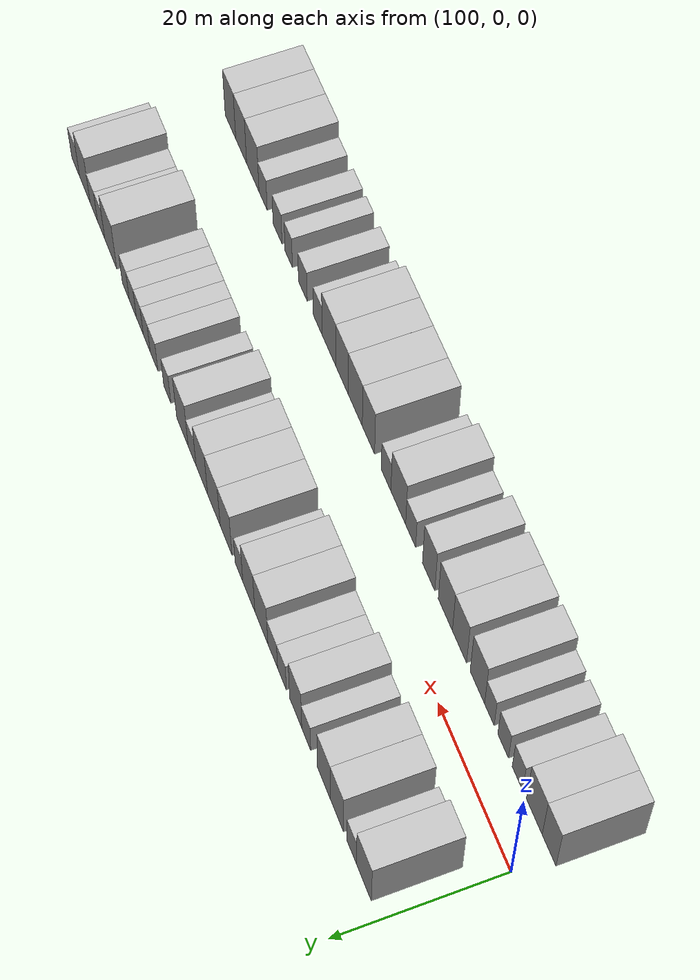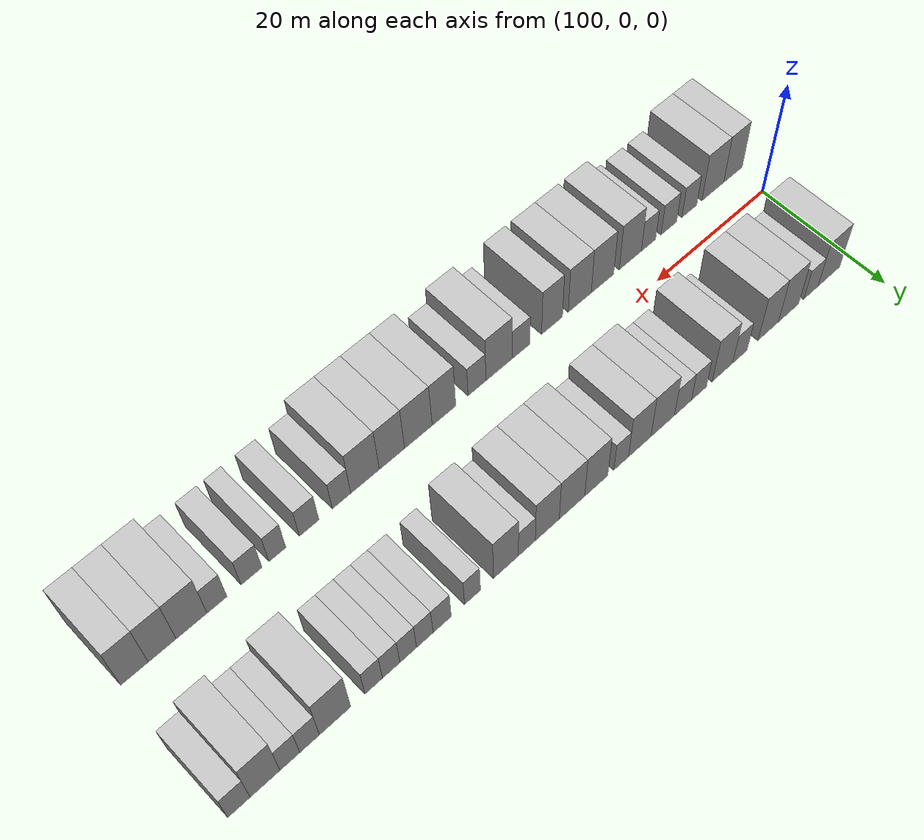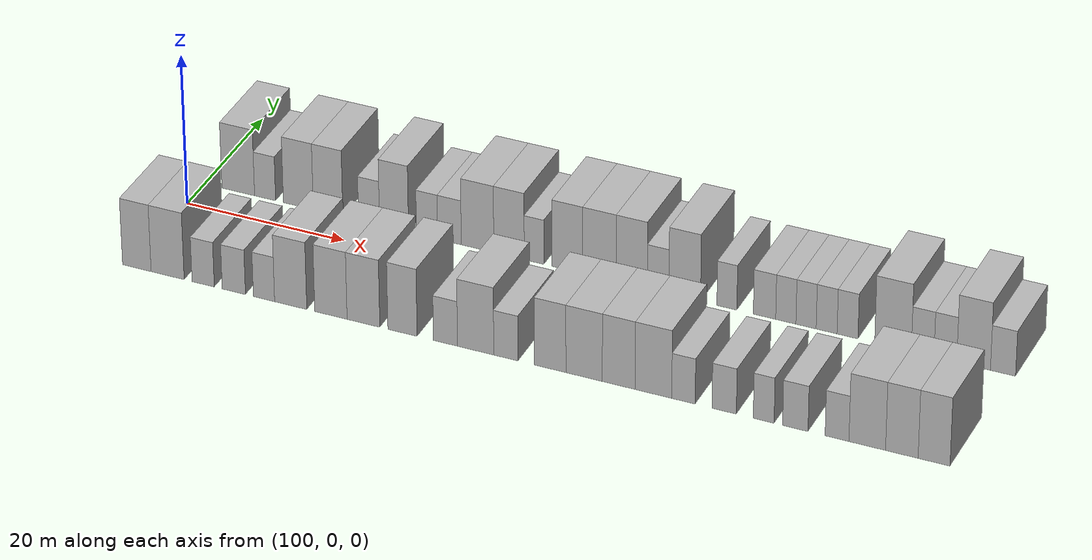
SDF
<sdf version="1.6">
 <world name="default">
  <model name="building_27">
   <static>1</static>
   <pose>104.3361 9.5000 0 0.000000 0.000000 1.570796</pose>
   <link name="link">
    <pose>0 0 4.50 0 0 0</pose>
    <collision name="collision"><geometry><box><size>10.0000 4.2153 9.0000</size></box></geometry></collision>
    <visual name="visual">
     <cast_shadows>0</cast_shadows>
     <geometry><box><size>10.0000 4.2153 9.0000</size></box></geometry>
     <material>
      <script>
       <uri>model://HANNAS_wall/materials/scripts</uri>
       <uri>model://HANNAS_wall/materials/textures</uri>
       <name>vrc/HANNAS_wall</name>
      </script>
     </material>
    </visual>
   </link>
  </model>
  <model name="building_28">
   <static>1</static>
   <pose>107.7985 9.5000 0 0.000000 0.000000 1.570796</pose>
   <link name="link">
    <pose>0 0 3.00 0 0 0</pose>
    <collision name="collision"><geometry><box><size>10.0000 2.7095 6.0000</size></box></geometry></collision>
    <visual name="visual">
     <cast_shadows>0</cast_shadows>
     <geometry><box><size>10.0000 2.7095 6.0000</size></box></geometry>
     <material>
      <script>
       <uri>model://HANNAS_wall/materials/scripts</uri>
       <uri>model://HANNAS_wall/materials/textures</uri>
       <name>vrc/HANNAS_wall</name>
      </script>
     </material>
    </visual>
   </link>
  </model>
  <model name="building_29">
   <static>1</static>
   <pose>112.0687 9.5000 0 0.000000 0.000000 1.570796</pose>
   <link name="link">
    <pose>0 0 4.50 0 0 0</pose>
    <collision name="collision"><geometry><box><size>10.0000 3.8309 9.0000</size></box></geometry></collision>
    <visual name="visual">
     <cast_shadows>0</cast_shadows>
     <geometry><box><size>10.0000 3.8309 9.0000</size></box></geometry>
     <material>
      <script>
       <uri>model://HANNAS_wall/materials/scripts</uri>
       <uri>model://HANNAS_wall/materials/textures</uri>
       <name>vrc/HANNAS_wall</name>
      </script>
     </material>
    </visual>
   </link>
  </model>
  <model name="building_30">
   <static>1</static>
   <pose>115.8714 9.5000 0 0.000000 0.000000 1.570796</pose>
   <link name="link">
    <pose>0 0 4.50 0 0 0</pose>
    <collision name="collision"><geometry><box><size>10.0000 3.7743 9.0000</size></box></geometry></collision>
    <visual name="visual">
     <cast_shadows>0</cast_shadows>
     <geometry><box><size>10.0000 3.7743 9.0000</size></box></geometry>
     <material>
      <script>
       <uri>model://HANNAS_wall/materials/scripts</uri>
       <uri>model://HANNAS_wall/materials/textures</uri>
       <name>vrc/HANNAS_wall</name>
      </script>
     </material>
    </visual>
   </link>
  </model>
  <model name="building_31">
   <static>1</static>
   <pose>121.0918 9.5000 0 0.000000 0.000000 1.570796</pose>
   <link name="link">
    <pose>0 0 3.00 0 0 0</pose>
    <collision name="collision"><geometry><box><size>10.0000 2.6666 6.0000</size></box></geometry></collision>
    <visual name="visual">
     <cast_shadows>0</cast_shadows>
     <geometry><box><size>10.0000 2.6666 6.0000</size></box></geometry>
     <material>
      <script>
       <uri>model://HANNAS_wall/materials/scripts</uri>
       <uri>model://HANNAS_wall/materials/textures</uri>
       <name>vrc/HANNAS_wall</name>
      </script>
     </material>
    </visual>
   </link>
  </model>
  <model name="building_32">
   <static>1</static>
   <pose>124.2639 9.5000 0 0.000000 0.000000 1.570796</pose>
   <link name="link">
    <pose>0 0 4.50 0 0 0</pose>
    <collision name="collision"><geometry><box><size>10.0000 3.6775 9.0000</size></box></geometry></collision>
    <visual name="visual">
     <cast_shadows>0</cast_shadows>
     <geometry><box><size>10.0000 3.6775 9.0000</size></box></geometry>
     <material>
      <script>
       <uri>model://HANNAS_wall/materials/scripts</uri>
       <uri>model://HANNAS_wall/materials/textures</uri>
       <name>vrc/HANNAS_wall</name>
      </script>
     </material>
    </visual>
   </link>
  </model>
  <model name="building_33">
   <static>1</static>
   <pose>128.4353 9.5000 0 0.000000 0.000000 1.570796</pose>
   <link name="link">
    <pose>0 0 3.00 0 0 0</pose>
    <collision name="collision"><geometry><box><size>10.0000 2.6653 6.0000</size></box></geometry></collision>
    <visual name="visual">
     <cast_shadows>0</cast_shadows>
     <geometry><box><size>10.0000 2.6653 6.0000</size></box></geometry>
     <material>
      <script>
       <uri>model://HANNAS_wall/materials/scripts</uri>
       <uri>model://HANNAS_wall/materials/textures</uri>
       <name>vrc/HANNAS_wall</name>
      </script>
     </material>
    </visual>
   </link>
  </model>
  <model name="building_34">
   <static>1</static>
   <pose>131.2586 9.5000 0 0.000000 0.000000 1.570796</pose>
   <link name="link">
    <pose>0 0 3.00 0 0 0</pose>
    <collision name="collision"><geometry><box><size>10.0000 2.9811 6.0000</size></box></geometry></collision>
    <visual name="visual">
     <cast_shadows>0</cast_shadows>
     <geometry><box><size>10.0000 2.9811 6.0000</size></box></geometry>
     <material>
      <script>
       <uri>model://HANNAS_wall/materials/scripts</uri>
       <uri>model://HANNAS_wall/materials/textures</uri>
       <name>vrc/HANNAS_wall</name>
      </script>
     </material>
    </visual>
   </link>
  </model>
  <model name="building_35">
   <static>1</static>
   <pose>134.7877 9.5000 0 0.000000 0.000000 1.570796</pose>
   <link name="link">
    <pose>0 0 4.50 0 0 0</pose>
    <collision name="collision"><geometry><box><size>10.0000 4.0771 9.0000</size></box></geometry></collision>
    <visual name="visual">
     <cast_shadows>0</cast_shadows>
     <geometry><box><size>10.0000 4.0771 9.0000</size></box></geometry>
     <material>
      <script>
       <uri>model://HANNAS_wall/materials/scripts</uri>
       <uri>model://HANNAS_wall/materials/textures</uri>
       <name>vrc/HANNAS_wall</name>
      </script>
     </material>
    </visual>
   </link>
  </model>
  <model name="building_36">
   <static>1</static>
   <pose>138.7302 9.5000 0 0.000000 0.000000 1.570796</pose>
   <link name="link">
    <pose>0 0 4.50 0 0 0</pose>
    <collision name="collision"><geometry><box><size>10.0000 3.8079 9.0000</size></box></geometry></collision>
    <visual name="visual">
     <cast_shadows>0</cast_shadows>
     <geometry><box><size>10.0000 3.8079 9.0000</size></box></geometry>
     <material>
      <script>
       <uri>model://HANNAS_wall/materials/scripts</uri>
       <uri>model://HANNAS_wall/materials/textures</uri>
       <name>vrc/HANNAS_wall</name>
      </script>
     </material>
    </visual>
   </link>
  </model>
  <model name="building_37">
   <static>1</static>
   <pose>141.8558 9.5000 0 0.000000 0.000000 1.570796</pose>
   <link name="link">
    <pose>0 0 3.00 0 0 0</pose>
    <collision name="collision"><geometry><box><size>10.0000 2.4435 6.0000</size></box></geometry></collision>
    <visual name="visual">
     <cast_shadows>0</cast_shadows>
     <geometry><box><size>10.0000 2.4435 6.0000</size></box></geometry>
     <material>
      <script>
       <uri>model://HANNAS_wall/materials/scripts</uri>
       <uri>model://HANNAS_wall/materials/textures</uri>
       <name>vrc/HANNAS_wall</name>
      </script>
     </material>
    </visual>
   </link>
  </model>
  <model name="building_38">
   <static>1</static>
   <pose>145.9824 9.5000 0 0.000000 0.000000 1.570796</pose>
   <link name="link">
    <pose>0 0 4.50 0 0 0</pose>
    <collision name="collision"><geometry><box><size>10.0000 3.8097 9.0000</size></box></geometry></collision>
    <visual name="visual">
     <cast_shadows>0</cast_shadows>
     <geometry><box><size>10.0000 3.8097 9.0000</size></box></geometry>
     <material>
      <script>
       <uri>model://HANNAS_wall/materials/scripts</uri>
       <uri>model://HANNAS_wall/materials/textures</uri>
       <name>vrc/HANNAS_wall</name>
      </script>
     </material>
    </visual>
   </link>
  </model>
  <model name="building_39">
   <static>1</static>
   <pose>149.9508 9.5000 0 0.000000 0.000000 1.570796</pose>
   <link name="link">
    <pose>0 0 4.50 0 0 0</pose>
    <collision name="collision"><geometry><box><size>10.0000 4.1271 9.0000</size></box></geometry></collision>
    <visual name="visual">
     <cast_shadows>0</cast_shadows>
     <geometry><box><size>10.0000 4.1271 9.0000</size></box></geometry>
     <material>
      <script>
       <uri>model://HANNAS_wall/materials/scripts</uri>
       <uri>model://HANNAS_wall/materials/textures</uri>
       <name>vrc/HANNAS_wall</name>
      </script>
     </material>
    </visual>
   </link>
  </model>
  <model name="building_40">
   <static>1</static>
   <pose>153.9296 9.5000 0 0.000000 0.000000 1.570796</pose>
   <link name="link">
    <pose>0 0 4.50 0 0 0</pose>
    <collision name="collision"><geometry><box><size>10.0000 3.8306 9.0000</size></box></geometry></collision>
    <visual name="visual">
     <cast_shadows>0</cast_shadows>
     <geometry><box><size>10.0000 3.8306 9.0000</size></box></geometry>
     <material>
      <script>
       <uri>model://HANNAS_wall/materials/scripts</uri>
       <uri>model://HANNAS_wall/materials/textures</uri>
       <name>vrc/HANNAS_wall</name>
      </script>
     </material>
    </visual>
   </link>
  </model>
  <model name="building_41">
   <static>1</static>
   <pose>157.1748 9.5000 0 0.000000 0.000000 1.570796</pose>
   <link name="link">
    <pose>0 0 3.00 0 0 0</pose>
    <collision name="collision"><geometry><box><size>10.0000 2.6598 6.0000</size></box></geometry></collision>
    <visual name="visual">
     <cast_shadows>0</cast_shadows>
     <geometry><box><size>10.0000 2.6598 6.0000</size></box></geometry>
     <material>
      <script>
       <uri>model://HANNAS_wall/materials/scripts</uri>
       <uri>model://HANNAS_wall/materials/textures</uri>
       <name>vrc/HANNAS_wall</name>
      </script>
     </material>
    </visual>
   </link>
  </model>
  <model name="building_42">
   <static>1</static>
   <pose>160.4369 9.5000 0 0.000000 0.000000 1.570796</pose>
   <link name="link">
    <pose>0 0 4.50 0 0 0</pose>
    <collision name="collision"><geometry><box><size>10.0000 3.8644 9.0000</size></box></geometry></collision>
    <visual name="visual">
     <cast_shadows>0</cast_shadows>
     <geometry><box><size>10.0000 3.8644 9.0000</size></box></geometry>
     <material>
      <script>
       <uri>model://HANNAS_wall/materials/scripts</uri>
       <uri>model://HANNAS_wall/materials/textures</uri>
       <name>vrc/HANNAS_wall</name>
      </script>
     </material>
    </visual>
   </link>
  </model>
  <model name="building_43">
   <static>1</static>
   <pose>165.5835 9.5000 0 0.000000 0.000000 1.570796</pose>
   <link name="link">
    <pose>0 0 3.00 0 0 0</pose>
    <collision name="collision"><geometry><box><size>10.0000 2.4288 6.0000</size></box></geometry></collision>
    <visual name="visual">
     <cast_shadows>0</cast_shadows>
     <geometry><box><size>10.0000 2.4288 6.0000</size></box></geometry>
     <material>
      <script>
       <uri>model://HANNAS_wall/materials/scripts</uri>
       <uri>model://HANNAS_wall/materials/textures</uri>
       <name>vrc/HANNAS_wall</name>
      </script>
     </material>
    </visual>
   </link>
  </model>
  <model name="building_44">
   <static>1</static>
   <pose>170.1487 9.5000 0 0.000000 0.000000 1.570796</pose>
   <link name="link">
    <pose>0 0 3.00 0 0 0</pose>
    <collision name="collision"><geometry><box><size>10.0000 2.7016 6.0000</size></box></geometry></collision>
    <visual name="visual">
     <cast_shadows>0</cast_shadows>
     <geometry><box><size>10.0000 2.7016 6.0000</size></box></geometry>
     <material>
      <script>
       <uri>model://HANNAS_wall/materials/scripts</uri>
       <uri>model://HANNAS_wall/materials/textures</uri>
       <name>vrc/HANNAS_wall</name>
      </script>
     </material>
    </visual>
   </link>
  </model>
  <model name="building_45">
   <static>1</static>
   <pose>172.7226 9.5000 0 0.000000 0.000000 1.570796</pose>
   <link name="link">
    <pose>0 0 3.00 0 0 0</pose>
    <collision name="collision"><geometry><box><size>10.0000 2.4462 6.0000</size></box></geometry></collision>
    <visual name="visual">
     <cast_shadows>0</cast_shadows>
     <geometry><box><size>10.0000 2.4462 6.0000</size></box></geometry>
     <material>
      <script>
       <uri>model://HANNAS_wall/materials/scripts</uri>
       <uri>model://HANNAS_wall/materials/textures</uri>
       <name>vrc/HANNAS_wall</name>
      </script>
     </material>
    </visual>
   </link>
  </model>
  <model name="building_46">
   <static>1</static>
   <pose>175.1632 9.5000 0 0.000000 0.000000 1.570796</pose>
   <link name="link">
    <pose>0 0 3.00 0 0 0</pose>
    <collision name="collision"><geometry><box><size>10.0000 2.4352 6.0000</size></box></geometry></collision>
    <visual name="visual">
     <cast_shadows>0</cast_shadows>
     <geometry><box><size>10.0000 2.4352 6.0000</size></box></geometry>
     <material>
      <script>
       <uri>model://HANNAS_wall/materials/scripts</uri>
       <uri>model://HANNAS_wall/materials/textures</uri>
       <name>vrc/HANNAS_wall</name>
      </script>
     </material>
    </visual>
   </link>
  </model>
  <model name="building_47">
   <static>1</static>
   <pose>177.6382 9.5000 0 0.000000 0.000000 1.570796</pose>
   <link name="link">
    <pose>0 0 3.00 0 0 0</pose>
    <collision name="collision"><geometry><box><size>10.0000 2.5147 6.0000</size></box></geometry></collision>
    <visual name="visual">
     <cast_shadows>0</cast_shadows>
     <geometry><box><size>10.0000 2.5147 6.0000</size></box></geometry>
     <material>
      <script>
       <uri>model://HANNAS_wall/materials/scripts</uri>
       <uri>model://HANNAS_wall/materials/textures</uri>
       <name>vrc/HANNAS_wall</name>
      </script>
     </material>
    </visual>
   </link>
  </model>
  <model name="building_48">
   <static>1</static>
   <pose>180.1481 9.5000 0 0.000000 0.000000 1.570796</pose>
   <link name="link">
    <pose>0 0 3.00 0 0 0</pose>
    <collision name="collision"><geometry><box><size>10.0000 2.5051 6.0000</size></box></geometry></collision>
    <visual name="visual">
     <cast_shadows>0</cast_shadows>
     <geometry><box><size>10.0000 2.5051 6.0000</size></box></geometry>
     <material>
      <script>
       <uri>model://HANNAS_wall/materials/scripts</uri>
       <uri>model://HANNAS_wall/materials/textures</uri>
       <name>vrc/HANNAS_wall</name>
      </script>
     </material>
    </visual>
   </link>
  </model>
  <model name="building_49">
   <static>1</static>
   <pose>185.5850 9.5000 0 0.000000 0.000000 1.570796</pose>
   <link name="link">
    <pose>0 0 4.50 0 0 0</pose>
    <collision name="collision"><geometry><box><size>10.0000 4.3687 9.0000</size></box></geometry></collision>
    <visual name="visual">
     <cast_shadows>0</cast_shadows>
     <geometry><box><size>10.0000 4.3687 9.0000</size></box></geometry>
     <material>
      <script>
       <uri>model://HANNAS_wall/materials/scripts</uri>
       <uri>model://HANNAS_wall/materials/textures</uri>
       <name>vrc/HANNAS_wall</name>
      </script>
     </material>
    </visual>
   </link>
  </model>
  <model name="building_50">
   <static>1</static>
   <pose>189.1171 9.5000 0 0.000000 0.000000 1.570796</pose>
   <link name="link">
    <pose>0 0 3.00 0 0 0</pose>
    <collision name="collision"><geometry><box><size>10.0000 2.6957 6.0000</size></box></geometry></collision>
    <visual name="visual">
     <cast_shadows>0</cast_shadows>
     <geometry><box><size>10.0000 2.6957 6.0000</size></box></geometry>
     <material>
      <script>
       <uri>model://HANNAS_wall/materials/scripts</uri>
       <uri>model://HANNAS_wall/materials/textures</uri>
       <name>vrc/HANNAS_wall</name>
      </script>
     </material>
    </visual>
   </link>
  </model>
  <model name="building_51">
   <static>1</static>
   <pose>191.8119 9.5000 0 0.000000 0.000000 1.570796</pose>
   <link name="link">
    <pose>0 0 3.00 0 0 0</pose>
    <collision name="collision"><geometry><box><size>10.0000 2.6939 6.0000</size></box></geometry></collision>
    <visual name="visual">
     <cast_shadows>0</cast_shadows>
     <geometry><box><size>10.0000 2.6939 6.0000</size></box></geometry>
     <material>
      <script>
       <uri>model://HANNAS_wall/materials/scripts</uri>
       <uri>model://HANNAS_wall/materials/textures</uri>
       <name>vrc/HANNAS_wall</name>
      </script>
     </material>
    </visual>
   </link>
  </model>
  <model name="building_52">
   <static>1</static>
   <pose>195.1478 9.5000 0 0.000000 0.000000 1.570796</pose>
   <link name="link">
    <pose>0 0 4.50 0 0 0</pose>
    <collision name="collision"><geometry><box><size>10.0000 3.9780 9.0000</size></box></geometry></collision>
    <visual name="visual">
     <cast_shadows>0</cast_shadows>
     <geometry><box><size>10.0000 3.9780 9.0000</size></box></geometry>
     <material>
      <script>
       <uri>model://HANNAS_wall/materials/scripts</uri>
       <uri>model://HANNAS_wall/materials/textures</uri>
       <name>vrc/HANNAS_wall</name>
      </script>
     </material>
    </visual>
   </link>
  </model>
  <model name="building_53">
   <static>1</static>
   <pose>198.6172 9.5000 0 0.000000 0.000000 1.570796</pose>
   <link name="link">
    <pose>0 0 3.00 0 0 0</pose>
    <collision name="collision"><geometry><box><size>10.0000 2.9608 6.0000</size></box></geometry></collision>
    <visual name="visual">
     <cast_shadows>0</cast_shadows>
     <geometry><box><size>10.0000 2.9608 6.0000</size></box></geometry>
     <material>
      <script>
       <uri>model://HANNAS_wall/materials/scripts</uri>
       <uri>model://HANNAS_wall/materials/textures</uri>
       <name>vrc/HANNAS_wall</name>
      </script>
     </material>
    </visual>
   </link>
  </model>
  <model name="building_78">
   <static>1</static>
   <pose>100.7708 -9.5000 0 0.000000 0.000000 1.570796</pose>
   <link name="link">
    <pose>0 0 4.50 0 0 0</pose>
    <collision name="collision"><geometry><box><size>10.0000 3.6310 9.0000</size></box></geometry></collision>
    <visual name="visual">
     <cast_shadows>0</cast_shadows>
     <geometry><box><size>10.0000 3.6310 9.0000</size></box></geometry>
     <material>
      <script>
       <uri>model://HANNAS_wall/materials/scripts</uri>
       <uri>model://HANNAS_wall/materials/textures</uri>
       <name>vrc/HANNAS_wall</name>
      </script>
     </material>
    </visual>
   </link>
  </model>
  <model name="building_79">
   <static>1</static>
   <pose>104.6839 -9.5000 0 0.000000 0.000000 1.570796</pose>
   <link name="link">
    <pose>0 0 4.50 0 0 0</pose>
    <collision name="collision"><geometry><box><size>10.0000 4.1952 9.0000</size></box></geometry></collision>
    <visual name="visual">
     <cast_shadows>0</cast_shadows>
     <geometry><box><size>10.0000 4.1952 9.0000</size></box></geometry>
     <material>
      <script>
       <uri>model://HANNAS_wall/materials/scripts</uri>
       <uri>model://HANNAS_wall/materials/textures</uri>
       <name>vrc/HANNAS_wall</name>
      </script>
     </material>
    </visual>
   </link>
  </model>
  <model name="building_80">
   <static>1</static>
   <pose>109.1863 -9.5000 0 0.000000 0.000000 1.570796</pose>
   <link name="link">
    <pose>0 0 3.00 0 0 0</pose>
    <collision name="collision"><geometry><box><size>10.0000 2.8095 6.0000</size></box></geometry></collision>
    <visual name="visual">
     <cast_shadows>0</cast_shadows>
     <geometry><box><size>10.0000 2.8095 6.0000</size></box></geometry>
     <material>
      <script>
       <uri>model://HANNAS_wall/materials/scripts</uri>
       <uri>model://HANNAS_wall/materials/textures</uri>
       <name>vrc/HANNAS_wall</name>
      </script>
     </material>
    </visual>
   </link>
  </model>
  <model name="building_81">
   <static>1</static>
   <pose>113.0525 -9.5000 0 0.000000 0.000000 1.570796</pose>
   <link name="link">
    <pose>0 0 3.00 0 0 0</pose>
    <collision name="collision"><geometry><box><size>10.0000 2.9230 6.0000</size></box></geometry></collision>
    <visual name="visual">
     <cast_shadows>0</cast_shadows>
     <geometry><box><size>10.0000 2.9230 6.0000</size></box></geometry>
     <material>
      <script>
       <uri>model://HANNAS_wall/materials/scripts</uri>
       <uri>model://HANNAS_wall/materials/textures</uri>
       <name>vrc/HANNAS_wall</name>
      </script>
     </material>
    </visual>
   </link>
  </model>
  <model name="building_82">
   <static>1</static>
   <pose>116.8422 -9.5000 0 0.000000 0.000000 1.570796</pose>
   <link name="link">
    <pose>0 0 3.00 0 0 0</pose>
    <collision name="collision"><geometry><box><size>10.0000 2.6564 6.0000</size></box></geometry></collision>
    <visual name="visual">
     <cast_shadows>0</cast_shadows>
     <geometry><box><size>10.0000 2.6564 6.0000</size></box></geometry>
     <material>
      <script>
       <uri>model://HANNAS_wall/materials/scripts</uri>
       <uri>model://HANNAS_wall/materials/textures</uri>
       <name>vrc/HANNAS_wall</name>
      </script>
     </material>
    </visual>
   </link>
  </model>
  <model name="building_83">
   <static>1</static>
   <pose>120.1828 -9.5000 0 0.000000 0.000000 1.570796</pose>
   <link name="link">
    <pose>0 0 4.50 0 0 0</pose>
    <collision name="collision"><geometry><box><size>10.0000 4.0248 9.0000</size></box></geometry></collision>
    <visual name="visual">
     <cast_shadows>0</cast_shadows>
     <geometry><box><size>10.0000 4.0248 9.0000</size></box></geometry>
     <material>
      <script>
       <uri>model://HANNAS_wall/materials/scripts</uri>
       <uri>model://HANNAS_wall/materials/textures</uri>
       <name>vrc/HANNAS_wall</name>
      </script>
     </material>
    </visual>
   </link>
  </model>
  <model name="building_84">
   <static>1</static>
   <pose>125.2018 -9.5000 0 0.000000 0.000000 1.570796</pose>
   <link name="link">
    <pose>0 0 4.50 0 0 0</pose>
    <collision name="collision"><geometry><box><size>10.0000 4.0130 9.0000</size></box></geometry></collision>
    <visual name="visual">
     <cast_shadows>0</cast_shadows>
     <geometry><box><size>10.0000 4.0130 9.0000</size></box></geometry>
     <material>
      <script>
       <uri>model://HANNAS_wall/materials/scripts</uri>
       <uri>model://HANNAS_wall/materials/textures</uri>
       <name>vrc/HANNAS_wall</name>
      </script>
     </material>
    </visual>
   </link>
  </model>
  <model name="building_85">
   <static>1</static>
   <pose>129.2365 -9.5000 0 0.000000 0.000000 1.570796</pose>
   <link name="link">
    <pose>0 0 4.50 0 0 0</pose>
    <collision name="collision"><geometry><box><size>10.0000 4.0565 9.0000</size></box></geometry></collision>
    <visual name="visual">
     <cast_shadows>0</cast_shadows>
     <geometry><box><size>10.0000 4.0565 9.0000</size></box></geometry>
     <material>
      <script>
       <uri>model://HANNAS_wall/materials/scripts</uri>
       <uri>model://HANNAS_wall/materials/textures</uri>
       <name>vrc/HANNAS_wall</name>
      </script>
     </material>
    </visual>
   </link>
  </model>
  <model name="building_86">
   <static>1</static>
   <pose>134.0668 -9.5000 0 0.000000 0.000000 1.570796</pose>
   <link name="link">
    <pose>0 0 4.50 0 0 0</pose>
    <collision name="collision"><geometry><box><size>10.0000 3.6040 9.0000</size></box></geometry></collision>
    <visual name="visual">
     <cast_shadows>0</cast_shadows>
     <geometry><box><size>10.0000 3.6040 9.0000</size></box></geometry>
     <material>
      <script>
       <uri>model://HANNAS_wall/materials/scripts</uri>
       <uri>model://HANNAS_wall/materials/textures</uri>
       <name>vrc/HANNAS_wall</name>
      </script>
     </material>
    </visual>
   </link>
  </model>
  <model name="building_87">
   <static>1</static>
   <pose>139.3465 -9.5000 0 0.000000 0.000000 1.570796</pose>
   <link name="link">
    <pose>0 0 3.00 0 0 0</pose>
    <collision name="collision"><geometry><box><size>10.0000 2.9555 6.0000</size></box></geometry></collision>
    <visual name="visual">
     <cast_shadows>0</cast_shadows>
     <geometry><box><size>10.0000 2.9555 6.0000</size></box></geometry>
     <material>
      <script>
       <uri>model://HANNAS_wall/materials/scripts</uri>
       <uri>model://HANNAS_wall/materials/textures</uri>
       <name>vrc/HANNAS_wall</name>
      </script>
     </material>
    </visual>
   </link>
  </model>
  <model name="building_88">
   <static>1</static>
   <pose>143.0411 -9.5000 0 0.000000 0.000000 1.570796</pose>
   <link name="link">
    <pose>0 0 4.50 0 0 0</pose>
    <collision name="collision"><geometry><box><size>10.0000 4.4336 9.0000</size></box></geometry></collision>
    <visual name="visual">
     <cast_shadows>0</cast_shadows>
     <geometry><box><size>10.0000 4.4336 9.0000</size></box></geometry>
     <material>
      <script>
       <uri>model://HANNAS_wall/materials/scripts</uri>
       <uri>model://HANNAS_wall/materials/textures</uri>
       <name>vrc/HANNAS_wall</name>
      </script>
     </material>
    </visual>
   </link>
  </model>
  <model name="building_89">
   <static>1</static>
   <pose>146.7337 -9.5000 0 0.000000 0.000000 1.570796</pose>
   <link name="link">
    <pose>0 0 3.00 0 0 0</pose>
    <collision name="collision"><geometry><box><size>10.0000 2.9517 6.0000</size></box></geometry></collision>
    <visual name="visual">
     <cast_shadows>0</cast_shadows>
     <geometry><box><size>10.0000 2.9517 6.0000</size></box></geometry>
     <material>
      <script>
       <uri>model://HANNAS_wall/materials/scripts</uri>
       <uri>model://HANNAS_wall/materials/textures</uri>
       <name>vrc/HANNAS_wall</name>
      </script>
     </material>
    </visual>
   </link>
  </model>
  <model name="building_90">
   <static>1</static>
   <pose>152.1089 -9.5000 0 0.000000 0.000000 1.570796</pose>
   <link name="link">
    <pose>0 0 4.50 0 0 0</pose>
    <collision name="collision"><geometry><box><size>10.0000 3.7985 9.0000</size></box></geometry></collision>
    <visual name="visual">
     <cast_shadows>0</cast_shadows>
     <geometry><box><size>10.0000 3.7985 9.0000</size></box></geometry>
     <material>
      <script>
       <uri>model://HANNAS_wall/materials/scripts</uri>
       <uri>model://HANNAS_wall/materials/textures</uri>
       <name>vrc/HANNAS_wall</name>
      </script>
     </material>
    </visual>
   </link>
  </model>
  <model name="building_91">
   <static>1</static>
   <pose>156.2014 -9.5000 0 0.000000 0.000000 1.570796</pose>
   <link name="link">
    <pose>0 0 4.50 0 0 0</pose>
    <collision name="collision"><geometry><box><size>10.0000 4.3866 9.0000</size></box></geometry></collision>
    <visual name="visual">
     <cast_shadows>0</cast_shadows>
     <geometry><box><size>10.0000 4.3866 9.0000</size></box></geometry>
     <material>
      <script>
       <uri>model://HANNAS_wall/materials/scripts</uri>
       <uri>model://HANNAS_wall/materials/textures</uri>
       <name>vrc/HANNAS_wall</name>
      </script>
     </material>
    </visual>
   </link>
  </model>
  <model name="building_92">
   <static>1</static>
   <pose>160.3669 -9.5000 0 0.000000 0.000000 1.570796</pose>
   <link name="link">
    <pose>0 0 4.50 0 0 0</pose>
    <collision name="collision"><geometry><box><size>10.0000 3.9443 9.0000</size></box></geometry></collision>
    <visual name="visual">
     <cast_shadows>0</cast_shadows>
     <geometry><box><size>10.0000 3.9443 9.0000</size></box></geometry>
     <material>
      <script>
       <uri>model://HANNAS_wall/materials/scripts</uri>
       <uri>model://HANNAS_wall/materials/textures</uri>
       <name>vrc/HANNAS_wall</name>
      </script>
     </material>
    </visual>
   </link>
  </model>
  <model name="building_93">
   <static>1</static>
   <pose>164.5272 -9.5000 0 0.000000 0.000000 1.570796</pose>
   <link name="link">
    <pose>0 0 4.50 0 0 0</pose>
    <collision name="collision"><geometry><box><size>10.0000 4.3764 9.0000</size></box></geometry></collision>
    <visual name="visual">
     <cast_shadows>0</cast_shadows>
     <geometry><box><size>10.0000 4.3764 9.0000</size></box></geometry>
     <material>
      <script>
       <uri>model://HANNAS_wall/materials/scripts</uri>
       <uri>model://HANNAS_wall/materials/textures</uri>
       <name>vrc/HANNAS_wall</name>
      </script>
     </material>
    </visual>
   </link>
  </model>
  <model name="building_94">
   <static>1</static>
   <pose>168.1132 -9.5000 0 0.000000 0.000000 1.570796</pose>
   <link name="link">
    <pose>0 0 3.00 0 0 0</pose>
    <collision name="collision"><geometry><box><size>10.0000 2.7956 6.0000</size></box></geometry></collision>
    <visual name="visual">
     <cast_shadows>0</cast_shadows>
     <geometry><box><size>10.0000 2.7956 6.0000</size></box></geometry>
     <material>
      <script>
       <uri>model://HANNAS_wall/materials/scripts</uri>
       <uri>model://HANNAS_wall/materials/textures</uri>
       <name>vrc/HANNAS_wall</name>
      </script>
     </material>
    </visual>
   </link>
  </model>
  <model name="building_95">
   <static>1</static>
   <pose>172.9537 -9.5000 0 0.000000 0.000000 1.570796</pose>
   <link name="link">
    <pose>0 0 3.00 0 0 0</pose>
    <collision name="collision"><geometry><box><size>10.0000 2.8854 6.0000</size></box></geometry></collision>
    <visual name="visual">
     <cast_shadows>0</cast_shadows>
     <geometry><box><size>10.0000 2.8854 6.0000</size></box></geometry>
     <material>
      <script>
       <uri>model://HANNAS_wall/materials/scripts</uri>
       <uri>model://HANNAS_wall/materials/textures</uri>
       <name>vrc/HANNAS_wall</name>
      </script>
     </material>
    </visual>
   </link>
  </model>
  <model name="building_96">
   <static>1</static>
   <pose>177.6258 -9.5000 0 0.000000 0.000000 1.570796</pose>
   <link name="link">
    <pose>0 0 3.00 0 0 0</pose>
    <collision name="collision"><geometry><box><size>10.0000 2.4587 6.0000</size></box></geometry></collision>
    <visual name="visual">
     <cast_shadows>0</cast_shadows>
     <geometry><box><size>10.0000 2.4587 6.0000</size></box></geometry>
     <material>
      <script>
       <uri>model://HANNAS_wall/materials/scripts</uri>
       <uri>model://HANNAS_wall/materials/textures</uri>
       <name>vrc/HANNAS_wall</name>
      </script>
     </material>
    </visual>
   </link>
  </model>
  <model name="building_97">
   <static>1</static>
   <pose>181.3499 -9.5000 0 0.000000 0.000000 1.570796</pose>
   <link name="link">
    <pose>0 0 3.00 0 0 0</pose>
    <collision name="collision"><geometry><box><size>10.0000 2.9895 6.0000</size></box></geometry></collision>
    <visual name="visual">
     <cast_shadows>0</cast_shadows>
     <geometry><box><size>10.0000 2.9895 6.0000</size></box></geometry>
     <material>
      <script>
       <uri>model://HANNAS_wall/materials/scripts</uri>
       <uri>model://HANNAS_wall/materials/textures</uri>
       <name>vrc/HANNAS_wall</name>
      </script>
     </material>
    </visual>
   </link>
  </model>
  <model name="building_98">
   <static>1</static>
   <pose>186.2370 -9.5000 0 0.000000 0.000000 1.570796</pose>
   <link name="link">
    <pose>0 0 3.00 0 0 0</pose>
    <collision name="collision"><geometry><box><size>10.0000 2.7847 6.0000</size></box></geometry></collision>
    <visual name="visual">
     <cast_shadows>0</cast_shadows>
     <geometry><box><size>10.0000 2.7847 6.0000</size></box></geometry>
     <material>
      <script>
       <uri>model://HANNAS_wall/materials/scripts</uri>
       <uri>model://HANNAS_wall/materials/textures</uri>
       <name>vrc/HANNAS_wall</name>
      </script>
     </material>
    </visual>
   </link>
  </model>
  <model name="building_99">
   <static>1</static>
   <pose>189.7633 -9.5000 0 0.000000 0.000000 1.570796</pose>
   <link name="link">
    <pose>0 0 4.50 0 0 0</pose>
    <collision name="collision"><geometry><box><size>10.0000 4.2677 9.0000</size></box></geometry></collision>
    <visual name="visual">
     <cast_shadows>0</cast_shadows>
     <geometry><box><size>10.0000 4.2677 9.0000</size></box></geometry>
     <material>
      <script>
       <uri>model://HANNAS_wall/materials/scripts</uri>
       <uri>model://HANNAS_wall/materials/textures</uri>
       <name>vrc/HANNAS_wall</name>
      </script>
     </material>
    </visual>
   </link>
  </model>
  <model name="building_100">
   <static>1</static>
   <pose>193.7881 -9.5000 0 0.000000 0.000000 1.570796</pose>
   <link name="link">
    <pose>0 0 4.50 0 0 0</pose>
    <collision name="collision"><geometry><box><size>10.0000 3.7820 9.0000</size></box></geometry></collision>
    <visual name="visual">
     <cast_shadows>0</cast_shadows>
     <geometry><box><size>10.0000 3.7820 9.0000</size></box></geometry>
     <material>
      <script>
       <uri>model://HANNAS_wall/materials/scripts</uri>
       <uri>model://HANNAS_wall/materials/textures</uri>
       <name>vrc/HANNAS_wall</name>
      </script>
     </material>
    </visual>
   </link>
  </model>
  <model name="building_101">
   <static>1</static>
   <pose>197.5250 -9.5000 0 0.000000 0.000000 1.570796</pose>
   <link name="link">
    <pose>0 0 4.50 0 0 0</pose>
    <collision name="collision"><geometry><box><size>10.0000 3.6918 9.0000</size></box></geometry></collision>
    <visual name="visual">
     <cast_shadows>0</cast_shadows>
     <geometry><box><size>10.0000 3.6918 9.0000</size></box></geometry>
     <material>
      <script>
       <uri>model://HANNAS_wall/materials/scripts</uri>
       <uri>model://HANNAS_wall/materials/textures</uri>
       <name>vrc/HANNAS_wall</name>
      </script>
     </material>
    </visual>
   </link>
  </model>
 </world>
</sdf>
